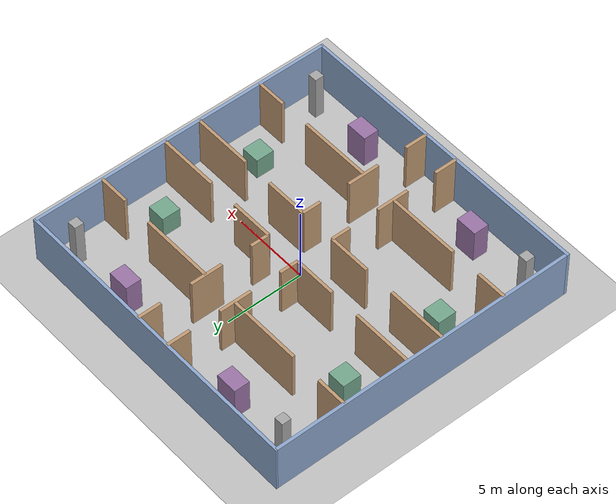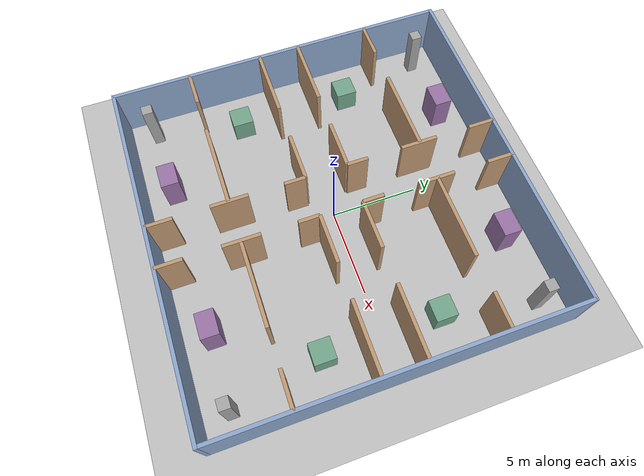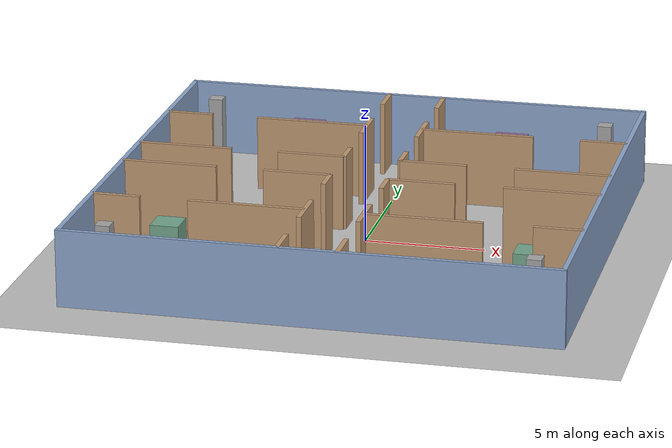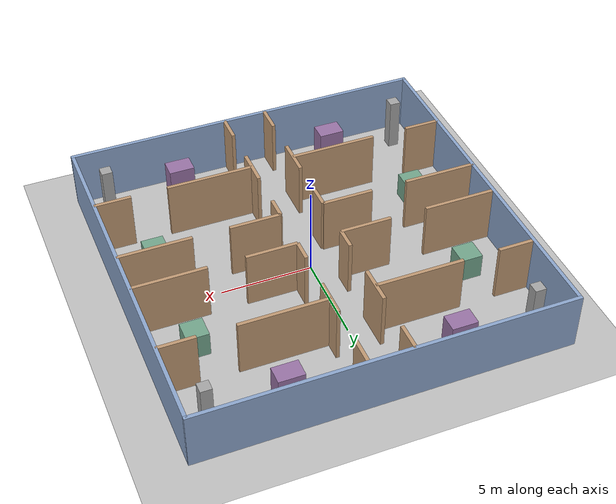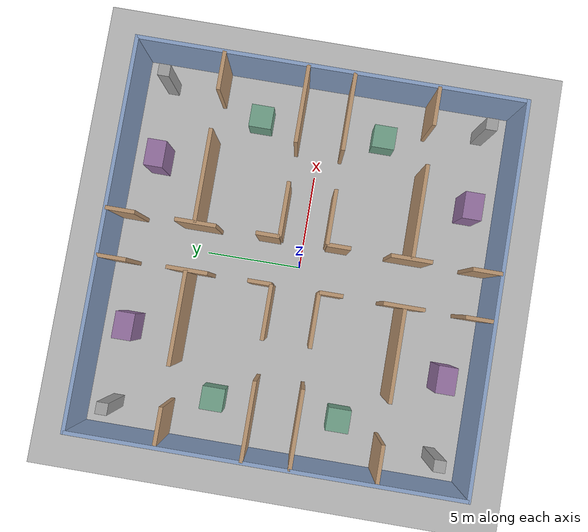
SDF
<?xml version='1.0' encoding='utf-8'?>
<sdf version="1.6">
  <world name="px4_complex">
    <gravity>0 0 -9.81</gravity>
    <physics type="ode">
      <max_step_size>0.002</max_step_size>
      <real_time_update_rate>500</real_time_update_rate>
    </physics>
    <scene>
      <ambient>0.6 0.6 0.6 1</ambient>
      <background>0.8 0.85 0.9 1</background>
    </scene>
    <light name="sun" type="directional">
      <pose>0 0 10 0 0 0</pose>
      <diffuse>0.8 0.8 0.8 1</diffuse>
      <direction>-0.2 -0.4 -1</direction>
    </light>
    <model name="ground">
      <static>true</static>
      <link name="ground">
        <collision name="collision">
          <geometry>
            <plane>
              <normal>0 0 1</normal>
              <size>30 30</size>
            </plane>
          </geometry>
        </collision>
        <visual name="visual">
          <geometry>
            <plane>
              <normal>0 0 1</normal>
              <size>30 30</size>
            </plane>
          </geometry>
          <material>
            <ambient>0.75 0.75 0.75 1</ambient>
          </material>
        </visual>
      </link>
    </model>
    <model name="outer_north">
      <static>true</static>
      <pose>0 10 1.6 0 0 0</pose>
      <link name="body">
        <collision name="collision">
          <geometry>
            <box>
              <size>20.2 0.2 3.2</size>
            </box>
          </geometry>
        </collision>
        <visual name="visual">
          <geometry>
            <box>
              <size>20.2 0.2 3.2</size>
            </box>
          </geometry>
          <material>
            <ambient>0.55 0.65 0.80 1</ambient>
            <diffuse>0.55 0.65 0.80 1</diffuse>
          </material>
        </visual>
      </link>
    </model>
    <model name="outer_south">
      <static>true</static>
      <pose>0 -10 1.6 0 0 0</pose>
      <link name="body">
        <collision name="collision">
          <geometry>
            <box>
              <size>20.2 0.2 3.2</size>
            </box>
          </geometry>
        </collision>
        <visual name="visual">
          <geometry>
            <box>
              <size>20.2 0.2 3.2</size>
            </box>
          </geometry>
          <material>
            <ambient>0.55 0.65 0.80 1</ambient>
            <diffuse>0.55 0.65 0.80 1</diffuse>
          </material>
        </visual>
      </link>
    </model>
    <model name="outer_east">
      <static>true</static>
      <pose>10 0 1.6 0 0 0</pose>
      <link name="body">
        <collision name="collision">
          <geometry>
            <box>
              <size>0.2 20 3.2</size>
            </box>
          </geometry>
        </collision>
        <visual name="visual">
          <geometry>
            <box>
              <size>0.2 20 3.2</size>
            </box>
          </geometry>
          <material>
            <ambient>0.55 0.65 0.80 1</ambient>
            <diffuse>0.55 0.65 0.80 1</diffuse>
          </material>
        </visual>
      </link>
    </model>
    <model name="outer_west">
      <static>true</static>
      <pose>-10 0 1.6 0 0 0</pose>
      <link name="body">
        <collision name="collision">
          <geometry>
            <box>
              <size>0.2 20 3.2</size>
            </box>
          </geometry>
        </collision>
        <visual name="visual">
          <geometry>
            <box>
              <size>0.2 20 3.2</size>
            </box>
          </geometry>
          <material>
            <ambient>0.55 0.65 0.80 1</ambient>
            <diffuse>0.55 0.65 0.80 1</diffuse>
          </material>
        </visual>
      </link>
    </model>
    <model name="corridor_side_-1_-1_0">
      <static>true</static>
      <pose>-1.2 -1.7999999999999998 1.6 0 0 0</pose>
      <link name="body">
        <collision name="collision">
          <geometry>
            <box>
              <size>0.2 1.2 3.2</size>
            </box>
          </geometry>
        </collision>
        <visual name="visual">
          <geometry>
            <box>
              <size>0.2 1.2 3.2</size>
            </box>
          </geometry>
          <material>
            <ambient>0.75 0.60 0.45 1</ambient>
            <diffuse>0.75 0.60 0.45 1</diffuse>
          </material>
        </visual>
      </link>
    </model>
    <model name="corridor_side_-1_-1_1">
      <static>true</static>
      <pose>-1.2 -5.45 1.6 0 0 0</pose>
      <link name="body">
        <collision name="collision">
          <geometry>
            <box>
              <size>0.2 2.0999999999999996 3.2</size>
            </box>
          </geometry>
        </collision>
        <visual name="visual">
          <geometry>
            <box>
              <size>0.2 2.0999999999999996 3.2</size>
            </box>
          </geometry>
          <material>
            <ambient>0.75 0.60 0.45 1</ambient>
            <diffuse>0.75 0.60 0.45 1</diffuse>
          </material>
        </visual>
      </link>
    </model>
    <model name="corridor_side_-1_-1_2">
      <static>true</static>
      <pose>-1.2 -9.25 1.6 0 0 0</pose>
      <link name="body">
        <collision name="collision">
          <geometry>
            <box>
              <size>0.2 1.5 3.2</size>
            </box>
          </geometry>
        </collision>
        <visual name="visual">
          <geometry>
            <box>
              <size>0.2 1.5 3.2</size>
            </box>
          </geometry>
          <material>
            <ambient>0.75 0.60 0.45 1</ambient>
            <diffuse>0.75 0.60 0.45 1</diffuse>
          </material>
        </visual>
      </link>
    </model>
    <model name="cross_side_-1_-1_0">
      <static>true</static>
      <pose>-2.6 -1.2 1.6 0 0 0</pose>
      <link name="body">
        <collision name="collision">
          <geometry>
            <box>
              <size>2.8 0.2 3.2</size>
            </box>
          </geometry>
        </collision>
        <visual name="visual">
          <geometry>
            <box>
              <size>2.8 0.2 3.2</size>
            </box>
          </geometry>
          <material>
            <ambient>0.75 0.60 0.45 1</ambient>
            <diffuse>0.75 0.60 0.45 1</diffuse>
          </material>
        </visual>
      </link>
    </model>
    <model name="cross_side_-1_-1_1">
      <static>true</static>
      <pose>-8.0 -1.2 1.6 0 0 0</pose>
      <link name="body">
        <collision name="collision">
          <geometry>
            <box>
              <size>4 0.2 3.2</size>
            </box>
          </geometry>
        </collision>
        <visual name="visual">
          <geometry>
            <box>
              <size>4 0.2 3.2</size>
            </box>
          </geometry>
          <material>
            <ambient>0.75 0.60 0.45 1</ambient>
            <diffuse>0.75 0.60 0.45 1</diffuse>
          </material>
        </visual>
      </link>
    </model>
    <model name="room_divider_-1_-1_0">
      <static>true</static>
      <pose>-3.6 -5.5 1.6 0 0 0</pose>
      <link name="body">
        <collision name="collision">
          <geometry>
            <box>
              <size>4.8 0.2 3.2</size>
            </box>
          </geometry>
        </collision>
        <visual name="visual">
          <geometry>
            <box>
              <size>4.8 0.2 3.2</size>
            </box>
          </geometry>
          <material>
            <ambient>0.75 0.60 0.45 1</ambient>
            <diffuse>0.75 0.60 0.45 1</diffuse>
          </material>
        </visual>
      </link>
    </model>
    <model name="room_divider_-1_-1_1">
      <static>true</static>
      <pose>-9.0 -5.5 1.6 0 0 0</pose>
      <link name="body">
        <collision name="collision">
          <geometry>
            <box>
              <size>2 0.2 3.2</size>
            </box>
          </geometry>
        </collision>
        <visual name="visual">
          <geometry>
            <box>
              <size>2 0.2 3.2</size>
            </box>
          </geometry>
          <material>
            <ambient>0.75 0.60 0.45 1</ambient>
            <diffuse>0.75 0.60 0.45 1</diffuse>
          </material>
        </visual>
      </link>
    </model>
    <model name="crate_inner_-1_-1">
      <static>true</static>
      <pose>-7.5 -3.3 0.7 0 0 0</pose>
      <link name="body">
        <collision name="collision">
          <geometry>
            <box>
              <size>1.2 1.2 1.4</size>
            </box>
          </geometry>
        </collision>
        <visual name="visual">
          <geometry>
            <box>
              <size>1.2 1.2 1.4</size>
            </box>
          </geometry>
          <material>
            <ambient>0.45 0.65 0.55 1</ambient>
            <diffuse>0.45 0.65 0.55 1</diffuse>
          </material>
        </visual>
      </link>
    </model>
    <model name="crate_outer_-1_-1">
      <static>true</static>
      <pose>-4.5 -8.3 1.1 0 0 0</pose>
      <link name="body">
        <collision name="collision">
          <geometry>
            <box>
              <size>1.4 1.0 2.2</size>
            </box>
          </geometry>
        </collision>
        <visual name="visual">
          <geometry>
            <box>
              <size>1.4 1.0 2.2</size>
            </box>
          </geometry>
          <material>
            <ambient>0.60 0.45 0.65 1</ambient>
            <diffuse>0.60 0.45 0.65 1</diffuse>
          </material>
        </visual>
      </link>
    </model>
    <model name="column_-1_-1">
      <static>true</static>
      <pose>-8.6 -8.4 1.5 0 0 0</pose>
      <link name="body">
        <collision name="collision">
          <geometry>
            <box>
              <size>0.6 0.6 3.0</size>
            </box>
          </geometry>
        </collision>
        <visual name="visual">
          <geometry>
            <box>
              <size>0.6 0.6 3.0</size>
            </box>
          </geometry>
          <material>
            <ambient>0.65 0.65 0.65 1</ambient>
            <diffuse>0.65 0.65 0.65 1</diffuse>
          </material>
        </visual>
      </link>
    </model>
    <model name="corridor_side_-1_1_0">
      <static>true</static>
      <pose>-1.2 1.7999999999999998 1.6 0 0 0</pose>
      <link name="body">
        <collision name="collision">
          <geometry>
            <box>
              <size>0.2 1.2 3.2</size>
            </box>
          </geometry>
        </collision>
        <visual name="visual">
          <geometry>
            <box>
              <size>0.2 1.2 3.2</size>
            </box>
          </geometry>
          <material>
            <ambient>0.75 0.60 0.45 1</ambient>
            <diffuse>0.75 0.60 0.45 1</diffuse>
          </material>
        </visual>
      </link>
    </model>
    <model name="corridor_side_-1_1_1">
      <static>true</static>
      <pose>-1.2 5.45 1.6 0 0 0</pose>
      <link name="body">
        <collision name="collision">
          <geometry>
            <box>
              <size>0.2 2.0999999999999996 3.2</size>
            </box>
          </geometry>
        </collision>
        <visual name="visual">
          <geometry>
            <box>
              <size>0.2 2.0999999999999996 3.2</size>
            </box>
          </geometry>
          <material>
            <ambient>0.75 0.60 0.45 1</ambient>
            <diffuse>0.75 0.60 0.45 1</diffuse>
          </material>
        </visual>
      </link>
    </model>
    <model name="corridor_side_-1_1_2">
      <static>true</static>
      <pose>-1.2 9.25 1.6 0 0 0</pose>
      <link name="body">
        <collision name="collision">
          <geometry>
            <box>
              <size>0.2 1.5 3.2</size>
            </box>
          </geometry>
        </collision>
        <visual name="visual">
          <geometry>
            <box>
              <size>0.2 1.5 3.2</size>
            </box>
          </geometry>
          <material>
            <ambient>0.75 0.60 0.45 1</ambient>
            <diffuse>0.75 0.60 0.45 1</diffuse>
          </material>
        </visual>
      </link>
    </model>
    <model name="cross_side_-1_1_0">
      <static>true</static>
      <pose>-2.6 1.2 1.6 0 0 0</pose>
      <link name="body">
        <collision name="collision">
          <geometry>
            <box>
              <size>2.8 0.2 3.2</size>
            </box>
          </geometry>
        </collision>
        <visual name="visual">
          <geometry>
            <box>
              <size>2.8 0.2 3.2</size>
            </box>
          </geometry>
          <material>
            <ambient>0.75 0.60 0.45 1</ambient>
            <diffuse>0.75 0.60 0.45 1</diffuse>
          </material>
        </visual>
      </link>
    </model>
    <model name="cross_side_-1_1_1">
      <static>true</static>
      <pose>-8.0 1.2 1.6 0 0 0</pose>
      <link name="body">
        <collision name="collision">
          <geometry>
            <box>
              <size>4 0.2 3.2</size>
            </box>
          </geometry>
        </collision>
        <visual name="visual">
          <geometry>
            <box>
              <size>4 0.2 3.2</size>
            </box>
          </geometry>
          <material>
            <ambient>0.75 0.60 0.45 1</ambient>
            <diffuse>0.75 0.60 0.45 1</diffuse>
          </material>
        </visual>
      </link>
    </model>
    <model name="room_divider_-1_1_0">
      <static>true</static>
      <pose>-3.6 5.5 1.6 0 0 0</pose>
      <link name="body">
        <collision name="collision">
          <geometry>
            <box>
              <size>4.8 0.2 3.2</size>
            </box>
          </geometry>
        </collision>
        <visual name="visual">
          <geometry>
            <box>
              <size>4.8 0.2 3.2</size>
            </box>
          </geometry>
          <material>
            <ambient>0.75 0.60 0.45 1</ambient>
            <diffuse>0.75 0.60 0.45 1</diffuse>
          </material>
        </visual>
      </link>
    </model>
    <model name="room_divider_-1_1_1">
      <static>true</static>
      <pose>-9.0 5.5 1.6 0 0 0</pose>
      <link name="body">
        <collision name="collision">
          <geometry>
            <box>
              <size>2 0.2 3.2</size>
            </box>
          </geometry>
        </collision>
        <visual name="visual">
          <geometry>
            <box>
              <size>2 0.2 3.2</size>
            </box>
          </geometry>
          <material>
            <ambient>0.75 0.60 0.45 1</ambient>
            <diffuse>0.75 0.60 0.45 1</diffuse>
          </material>
        </visual>
      </link>
    </model>
    <model name="crate_inner_-1_1">
      <static>true</static>
      <pose>-7.5 3.3 0.7 0 0 0</pose>
      <link name="body">
        <collision name="collision">
          <geometry>
            <box>
              <size>1.2 1.2 1.4</size>
            </box>
          </geometry>
        </collision>
        <visual name="visual">
          <geometry>
            <box>
              <size>1.2 1.2 1.4</size>
            </box>
          </geometry>
          <material>
            <ambient>0.45 0.65 0.55 1</ambient>
            <diffuse>0.45 0.65 0.55 1</diffuse>
          </material>
        </visual>
      </link>
    </model>
    <model name="crate_outer_-1_1">
      <static>true</static>
      <pose>-4.5 8.3 1.1 0 0 0</pose>
      <link name="body">
        <collision name="collision">
          <geometry>
            <box>
              <size>1.4 1.0 2.2</size>
            </box>
          </geometry>
        </collision>
        <visual name="visual">
          <geometry>
            <box>
              <size>1.4 1.0 2.2</size>
            </box>
          </geometry>
          <material>
            <ambient>0.60 0.45 0.65 1</ambient>
            <diffuse>0.60 0.45 0.65 1</diffuse>
          </material>
        </visual>
      </link>
    </model>
    <model name="column_-1_1">
      <static>true</static>
      <pose>-8.6 8.4 1.5 0 0 0</pose>
      <link name="body">
        <collision name="collision">
          <geometry>
            <box>
              <size>0.6 0.6 3.0</size>
            </box>
          </geometry>
        </collision>
        <visual name="visual">
          <geometry>
            <box>
              <size>0.6 0.6 3.0</size>
            </box>
          </geometry>
          <material>
            <ambient>0.65 0.65 0.65 1</ambient>
            <diffuse>0.65 0.65 0.65 1</diffuse>
          </material>
        </visual>
      </link>
    </model>
    <model name="corridor_side_1_-1_0">
      <static>true</static>
      <pose>1.2 -1.7999999999999998 1.6 0 0 0</pose>
      <link name="body">
        <collision name="collision">
          <geometry>
            <box>
              <size>0.2 1.2 3.2</size>
            </box>
          </geometry>
        </collision>
        <visual name="visual">
          <geometry>
            <box>
              <size>0.2 1.2 3.2</size>
            </box>
          </geometry>
          <material>
            <ambient>0.75 0.60 0.45 1</ambient>
            <diffuse>0.75 0.60 0.45 1</diffuse>
          </material>
        </visual>
      </link>
    </model>
    <model name="corridor_side_1_-1_1">
      <static>true</static>
      <pose>1.2 -5.45 1.6 0 0 0</pose>
      <link name="body">
        <collision name="collision">
          <geometry>
            <box>
              <size>0.2 2.0999999999999996 3.2</size>
            </box>
          </geometry>
        </collision>
        <visual name="visual">
          <geometry>
            <box>
              <size>0.2 2.0999999999999996 3.2</size>
            </box>
          </geometry>
          <material>
            <ambient>0.75 0.60 0.45 1</ambient>
            <diffuse>0.75 0.60 0.45 1</diffuse>
          </material>
        </visual>
      </link>
    </model>
    <model name="corridor_side_1_-1_2">
      <static>true</static>
      <pose>1.2 -9.25 1.6 0 0 0</pose>
      <link name="body">
        <collision name="collision">
          <geometry>
            <box>
              <size>0.2 1.5 3.2</size>
            </box>
          </geometry>
        </collision>
        <visual name="visual">
          <geometry>
            <box>
              <size>0.2 1.5 3.2</size>
            </box>
          </geometry>
          <material>
            <ambient>0.75 0.60 0.45 1</ambient>
            <diffuse>0.75 0.60 0.45 1</diffuse>
          </material>
        </visual>
      </link>
    </model>
    <model name="cross_side_1_-1_0">
      <static>true</static>
      <pose>2.6 -1.2 1.6 0 0 0</pose>
      <link name="body">
        <collision name="collision">
          <geometry>
            <box>
              <size>2.8 0.2 3.2</size>
            </box>
          </geometry>
        </collision>
        <visual name="visual">
          <geometry>
            <box>
              <size>2.8 0.2 3.2</size>
            </box>
          </geometry>
          <material>
            <ambient>0.75 0.60 0.45 1</ambient>
            <diffuse>0.75 0.60 0.45 1</diffuse>
          </material>
        </visual>
      </link>
    </model>
    <model name="cross_side_1_-1_1">
      <static>true</static>
      <pose>8.0 -1.2 1.6 0 0 0</pose>
      <link name="body">
        <collision name="collision">
          <geometry>
            <box>
              <size>4 0.2 3.2</size>
            </box>
          </geometry>
        </collision>
        <visual name="visual">
          <geometry>
            <box>
              <size>4 0.2 3.2</size>
            </box>
          </geometry>
          <material>
            <ambient>0.75 0.60 0.45 1</ambient>
            <diffuse>0.75 0.60 0.45 1</diffuse>
          </material>
        </visual>
      </link>
    </model>
    <model name="room_divider_1_-1_0">
      <static>true</static>
      <pose>3.6 -5.5 1.6 0 0 0</pose>
      <link name="body">
        <collision name="collision">
          <geometry>
            <box>
              <size>4.8 0.2 3.2</size>
            </box>
          </geometry>
        </collision>
        <visual name="visual">
          <geometry>
            <box>
              <size>4.8 0.2 3.2</size>
            </box>
          </geometry>
          <material>
            <ambient>0.75 0.60 0.45 1</ambient>
            <diffuse>0.75 0.60 0.45 1</diffuse>
          </material>
        </visual>
      </link>
    </model>
    <model name="room_divider_1_-1_1">
      <static>true</static>
      <pose>9.0 -5.5 1.6 0 0 0</pose>
      <link name="body">
        <collision name="collision">
          <geometry>
            <box>
              <size>2 0.2 3.2</size>
            </box>
          </geometry>
        </collision>
        <visual name="visual">
          <geometry>
            <box>
              <size>2 0.2 3.2</size>
            </box>
          </geometry>
          <material>
            <ambient>0.75 0.60 0.45 1</ambient>
            <diffuse>0.75 0.60 0.45 1</diffuse>
          </material>
        </visual>
      </link>
    </model>
    <model name="crate_inner_1_-1">
      <static>true</static>
      <pose>7.5 -3.3 0.7 0 0 0</pose>
      <link name="body">
        <collision name="collision">
          <geometry>
            <box>
              <size>1.2 1.2 1.4</size>
            </box>
          </geometry>
        </collision>
        <visual name="visual">
          <geometry>
            <box>
              <size>1.2 1.2 1.4</size>
            </box>
          </geometry>
          <material>
            <ambient>0.45 0.65 0.55 1</ambient>
            <diffuse>0.45 0.65 0.55 1</diffuse>
          </material>
        </visual>
      </link>
    </model>
    <model name="crate_outer_1_-1">
      <static>true</static>
      <pose>4.5 -8.3 1.1 0 0 0</pose>
      <link name="body">
        <collision name="collision">
          <geometry>
            <box>
              <size>1.4 1.0 2.2</size>
            </box>
          </geometry>
        </collision>
        <visual name="visual">
          <geometry>
            <box>
              <size>1.4 1.0 2.2</size>
            </box>
          </geometry>
          <material>
            <ambient>0.60 0.45 0.65 1</ambient>
            <diffuse>0.60 0.45 0.65 1</diffuse>
          </material>
        </visual>
      </link>
    </model>
    <model name="column_1_-1">
      <static>true</static>
      <pose>8.6 -8.4 1.5 0 0 0</pose>
      <link name="body">
        <collision name="collision">
          <geometry>
            <box>
              <size>0.6 0.6 3.0</size>
            </box>
          </geometry>
        </collision>
        <visual name="visual">
          <geometry>
            <box>
              <size>0.6 0.6 3.0</size>
            </box>
          </geometry>
          <material>
            <ambient>0.65 0.65 0.65 1</ambient>
            <diffuse>0.65 0.65 0.65 1</diffuse>
          </material>
        </visual>
      </link>
    </model>
    <model name="corridor_side_1_1_0">
      <static>true</static>
      <pose>1.2 1.7999999999999998 1.6 0 0 0</pose>
      <link name="body">
        <collision name="collision">
          <geometry>
            <box>
              <size>0.2 1.2 3.2</size>
            </box>
          </geometry>
        </collision>
        <visual name="visual">
          <geometry>
            <box>
              <size>0.2 1.2 3.2</size>
            </box>
          </geometry>
          <material>
            <ambient>0.75 0.60 0.45 1</ambient>
            <diffuse>0.75 0.60 0.45 1</diffuse>
          </material>
        </visual>
      </link>
    </model>
    <model name="corridor_side_1_1_1">
      <static>true</static>
      <pose>1.2 5.45 1.6 0 0 0</pose>
      <link name="body">
        <collision name="collision">
          <geometry>
            <box>
              <size>0.2 2.0999999999999996 3.2</size>
            </box>
          </geometry>
        </collision>
        <visual name="visual">
          <geometry>
            <box>
              <size>0.2 2.0999999999999996 3.2</size>
            </box>
          </geometry>
          <material>
            <ambient>0.75 0.60 0.45 1</ambient>
            <diffuse>0.75 0.60 0.45 1</diffuse>
          </material>
        </visual>
      </link>
    </model>
    <model name="corridor_side_1_1_2">
      <static>true</static>
      <pose>1.2 9.25 1.6 0 0 0</pose>
      <link name="body">
        <collision name="collision">
          <geometry>
            <box>
              <size>0.2 1.5 3.2</size>
            </box>
          </geometry>
        </collision>
        <visual name="visual">
          <geometry>
            <box>
              <size>0.2 1.5 3.2</size>
            </box>
          </geometry>
          <material>
            <ambient>0.75 0.60 0.45 1</ambient>
            <diffuse>0.75 0.60 0.45 1</diffuse>
          </material>
        </visual>
      </link>
    </model>
    <model name="cross_side_1_1_0">
      <static>true</static>
      <pose>2.6 1.2 1.6 0 0 0</pose>
      <link name="body">
        <collision name="collision">
          <geometry>
            <box>
              <size>2.8 0.2 3.2</size>
            </box>
          </geometry>
        </collision>
        <visual name="visual">
          <geometry>
            <box>
              <size>2.8 0.2 3.2</size>
            </box>
          </geometry>
          <material>
            <ambient>0.75 0.60 0.45 1</ambient>
            <diffuse>0.75 0.60 0.45 1</diffuse>
          </material>
        </visual>
      </link>
    </model>
    <model name="cross_side_1_1_1">
      <static>true</static>
      <pose>8.0 1.2 1.6 0 0 0</pose>
      <link name="body">
        <collision name="collision">
          <geometry>
            <box>
              <size>4 0.2 3.2</size>
            </box>
          </geometry>
        </collision>
        <visual name="visual">
          <geometry>
            <box>
              <size>4 0.2 3.2</size>
            </box>
          </geometry>
          <material>
            <ambient>0.75 0.60 0.45 1</ambient>
            <diffuse>0.75 0.60 0.45 1</diffuse>
          </material>
        </visual>
      </link>
    </model>
    <model name="room_divider_1_1_0">
      <static>true</static>
      <pose>3.6 5.5 1.6 0 0 0</pose>
      <link name="body">
        <collision name="collision">
          <geometry>
            <box>
              <size>4.8 0.2 3.2</size>
            </box>
          </geometry>
        </collision>
        <visual name="visual">
          <geometry>
            <box>
              <size>4.8 0.2 3.2</size>
            </box>
          </geometry>
          <material>
            <ambient>0.75 0.60 0.45 1</ambient>
            <diffuse>0.75 0.60 0.45 1</diffuse>
          </material>
        </visual>
      </link>
    </model>
    <model name="room_divider_1_1_1">
      <static>true</static>
      <pose>9.0 5.5 1.6 0 0 0</pose>
      <link name="body">
        <collision name="collision">
          <geometry>
            <box>
              <size>2 0.2 3.2</size>
            </box>
          </geometry>
        </collision>
        <visual name="visual">
          <geometry>
            <box>
              <size>2 0.2 3.2</size>
            </box>
          </geometry>
          <material>
            <ambient>0.75 0.60 0.45 1</ambient>
            <diffuse>0.75 0.60 0.45 1</diffuse>
          </material>
        </visual>
      </link>
    </model>
    <model name="crate_inner_1_1">
      <static>true</static>
      <pose>7.5 3.3 0.7 0 0 0</pose>
      <link name="body">
        <collision name="collision">
          <geometry>
            <box>
              <size>1.2 1.2 1.4</size>
            </box>
          </geometry>
        </collision>
        <visual name="visual">
          <geometry>
            <box>
              <size>1.2 1.2 1.4</size>
            </box>
          </geometry>
          <material>
            <ambient>0.45 0.65 0.55 1</ambient>
            <diffuse>0.45 0.65 0.55 1</diffuse>
          </material>
        </visual>
      </link>
    </model>
    <model name="crate_outer_1_1">
      <static>true</static>
      <pose>4.5 8.3 1.1 0 0 0</pose>
      <link name="body">
        <collision name="collision">
          <geometry>
            <box>
              <size>1.4 1.0 2.2</size>
            </box>
          </geometry>
        </collision>
        <visual name="visual">
          <geometry>
            <box>
              <size>1.4 1.0 2.2</size>
            </box>
          </geometry>
          <material>
            <ambient>0.60 0.45 0.65 1</ambient>
            <diffuse>0.60 0.45 0.65 1</diffuse>
          </material>
        </visual>
      </link>
    </model>
    <model name="column_1_1">
      <static>true</static>
      <pose>8.6 8.4 1.5 0 0 0</pose>
      <link name="body">
        <collision name="collision">
          <geometry>
            <box>
              <size>0.6 0.6 3.0</size>
            </box>
          </geometry>
        </collision>
        <visual name="visual">
          <geometry>
            <box>
              <size>0.6 0.6 3.0</size>
            </box>
          </geometry>
          <material>
            <ambient>0.65 0.65 0.65 1</ambient>
            <diffuse>0.65 0.65 0.65 1</diffuse>
          </material>
        </visual>
      </link>
    </model>
    <gui fullscreen="0">
      <camera name="overview">
        <pose>22 -22 24 0 0.65 2.35619449</pose>
        <view_controller>orbit</view_controller>
      </camera>
    </gui>
  </world>
</sdf>
